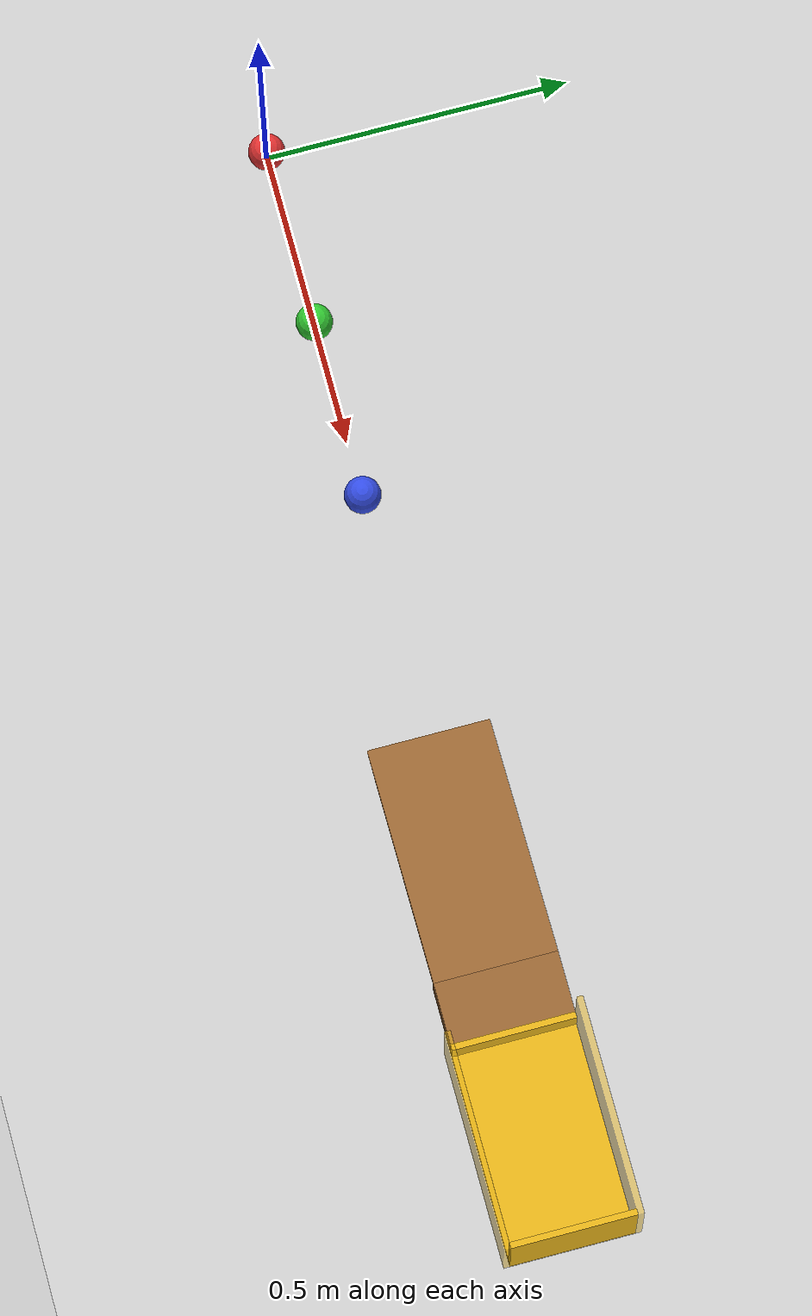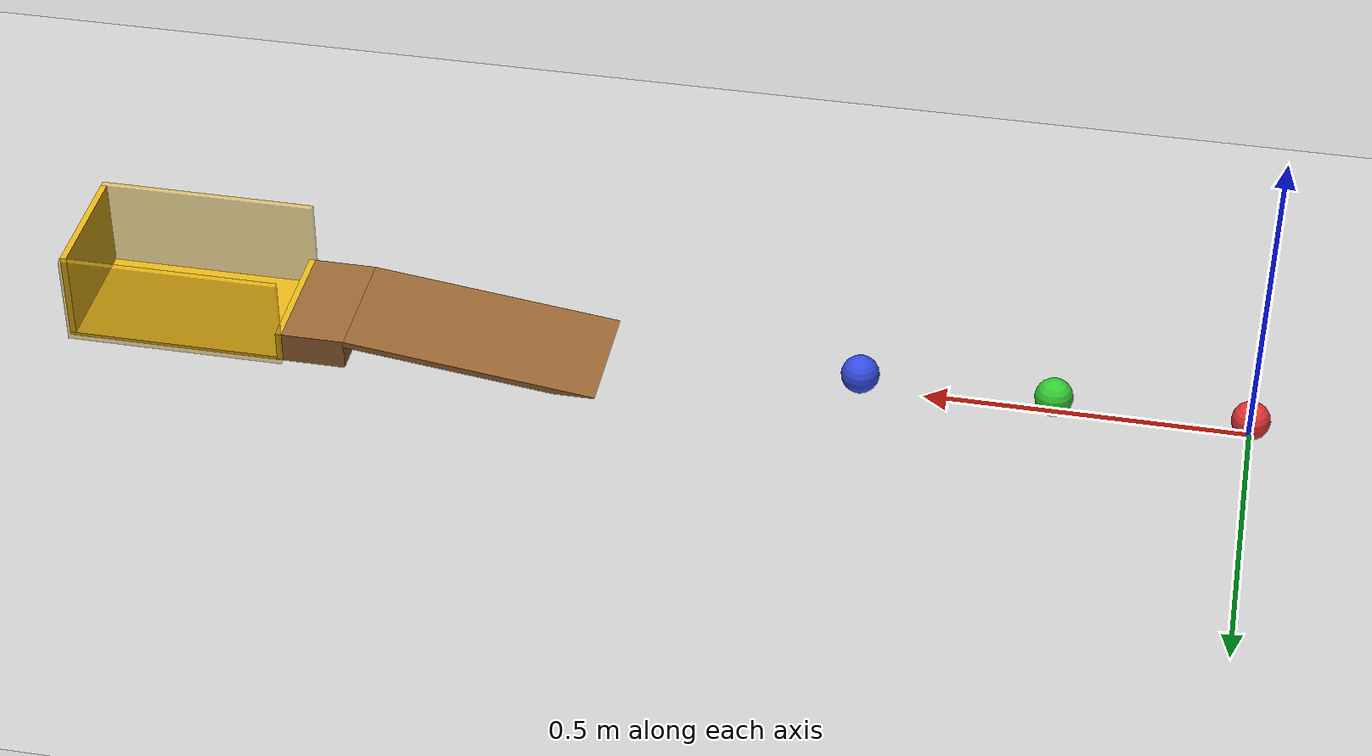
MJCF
<mujoco model="three_ball_chain_into_cup">
  <option timestep="0.002"/>
  <worldbody>
    <light name="sun" pos="0.8 -1 2" dir="0 0.4 -1" directional="true"/>
    <geom name="floor" type="plane" pos="0 0 0" size="3 1 0.1" rgba="0.8 0.8 0.8 1"/>

    <body name="ball1" pos="0 0 0.03">
      <freejoint/>
      <geom name="ball1_geom" type="sphere" size="0.03" solref="0.005 0.1" rgba="0.9 0.2 0.2 1"/>
    </body>
    <body name="ball2" pos="0.3 0 0.03">
      <freejoint/>
      <geom name="ball2_geom" type="sphere" size="0.03" solref="0.005 0.1" rgba="0.2 0.8 0.2 1"/>
    </body>
    <body name="ball3" pos="0.6 0 0.03">
      <freejoint/>
      <geom name="ball3_geom" type="sphere" size="0.03" solref="0.005 0.1" rgba="0.2 0.3 0.9 1"/>
    </body>

    <geom name="ramp" type="box" pos="1.20062 0 0.02004" euler="0 -7.125 0" size="0.20156 0.1 0.005" rgba="0.6 0.4 0.2 1"/>
    <geom name="platform" type="box" pos="1.45 0 0.025" size="0.05 0.1 0.025" rgba="0.6 0.4 0.2 1"/>

    <body name="cup" pos="1.5 0 0">
      <geom name="cup_base" type="box" pos="0.175 0 0.0025" size="0.175 0.1 0.0025" condim="6" friction="1 0.01 0.01" rgba="0.9 0.7 0.1 1"/>
      <geom name="cup_near" type="box" pos="0.005 0 0.025" size="0.005 0.1 0.025" condim="6" friction="1 0.01 0.01" rgba="0.9 0.7 0.1 1"/>
      <geom name="cup_far" type="box" pos="0.345 0 0.075" size="0.005 0.1 0.075" condim="6" friction="1 0.01 0.01" rgba="0.9 0.7 0.1 1"/>
      <geom name="cup_left" type="box" pos="0.175 0.105 0.075" size="0.175 0.005 0.075" condim="6" friction="1 0.01 0.01" rgba="0.9 0.7 0.1 0.5"/>
      <geom name="cup_right" type="box" pos="0.175 -0.105 0.075" size="0.175 0.005 0.075" condim="6" friction="1 0.01 0.01" rgba="0.9 0.7 0.1 0.5"/>
    </body>
  </worldbody>

  <keyframe>
    <key name="start" qpos="0 0 0.03 1 0 0 0 0.3 0 0.03 1 0 0 0 0.6 0 0.03 1 0 0 0" qvel="4 0 0 0 133.333 0 0 0 0 0 0 0 0 0 0 0 0 0"/>
  </keyframe>
</mujoco>
